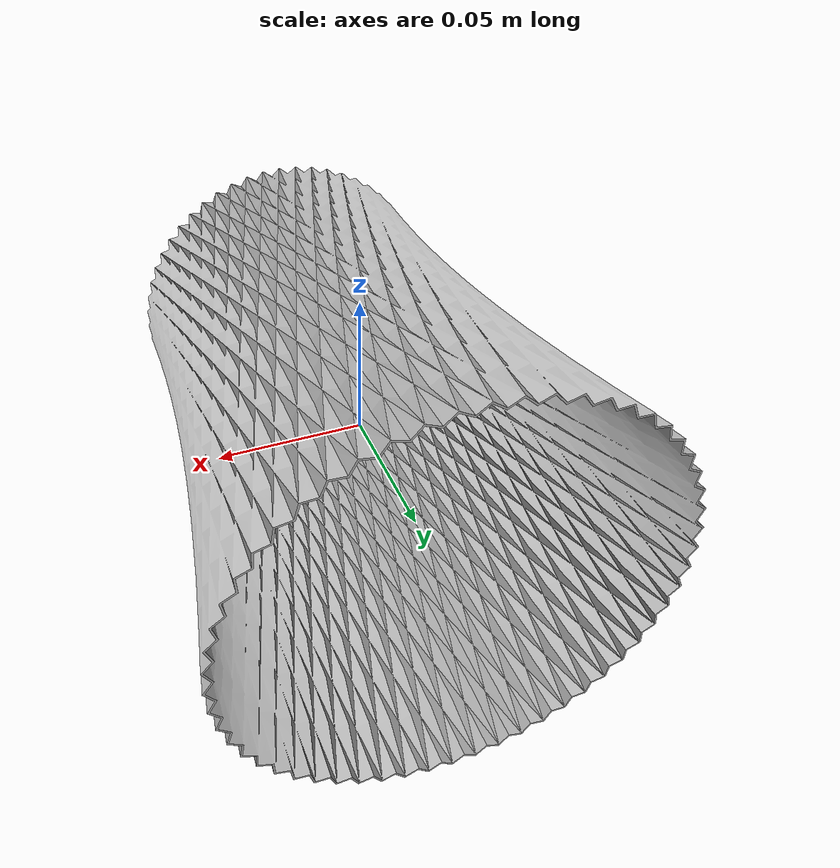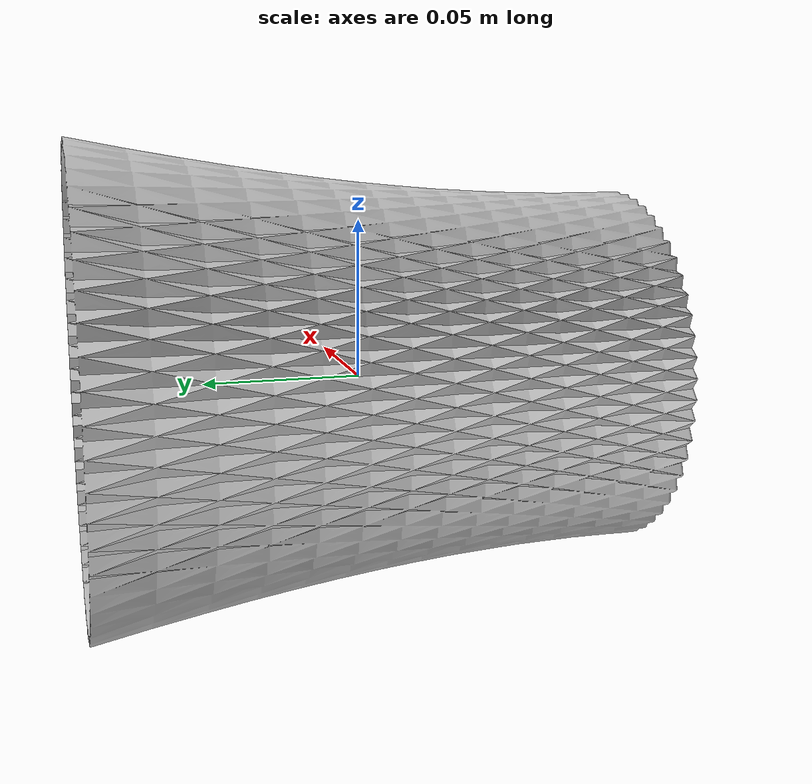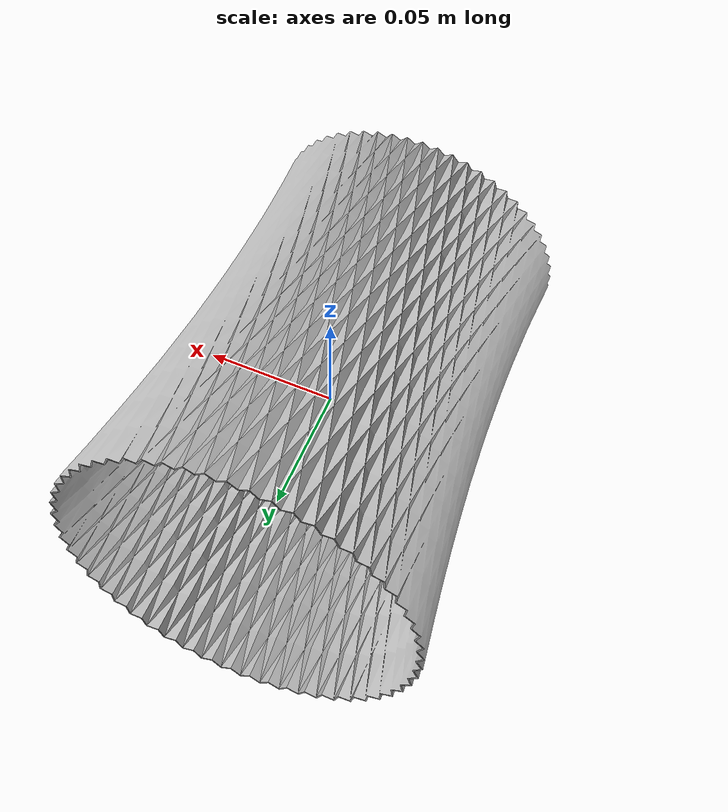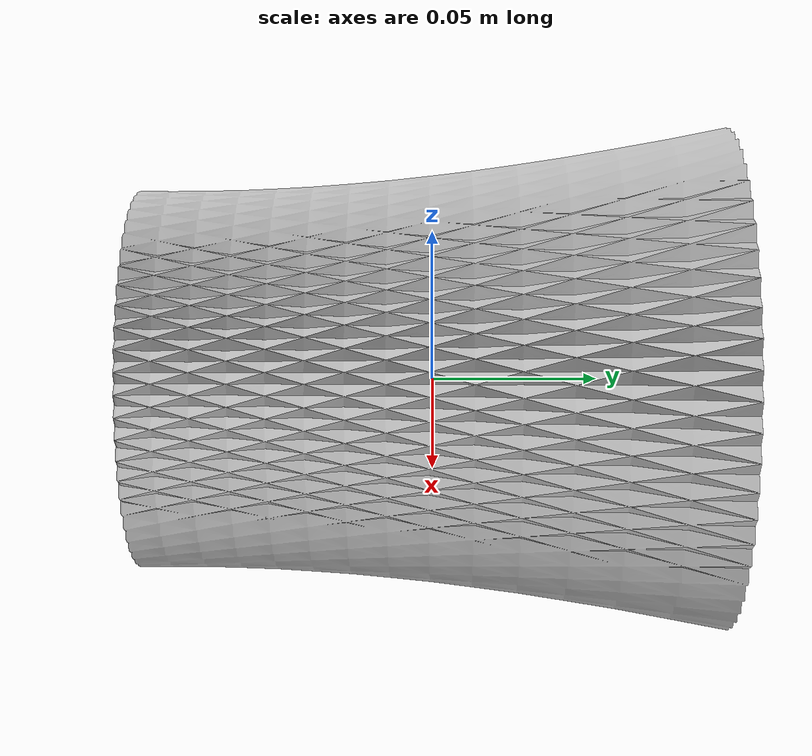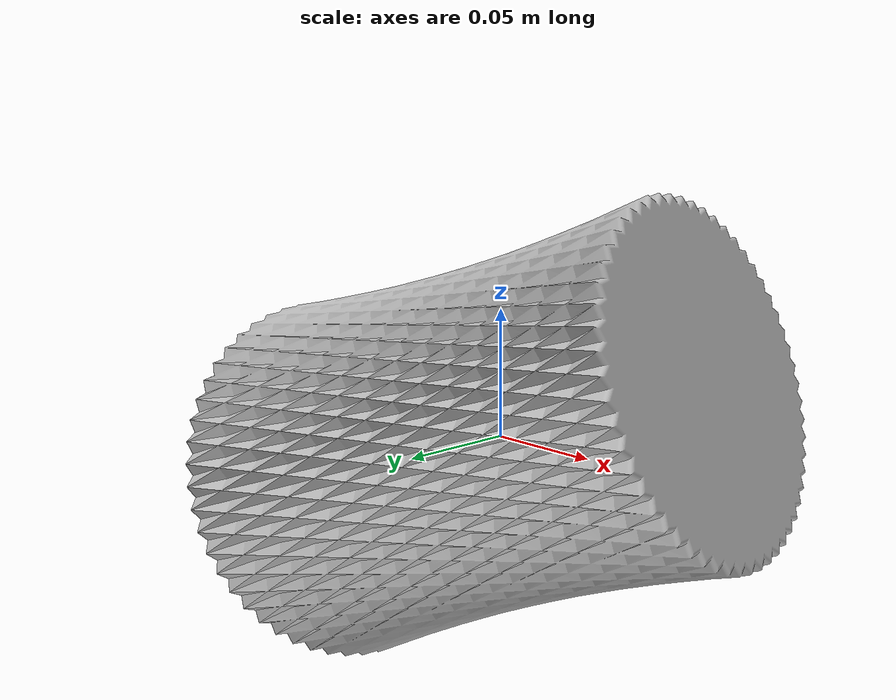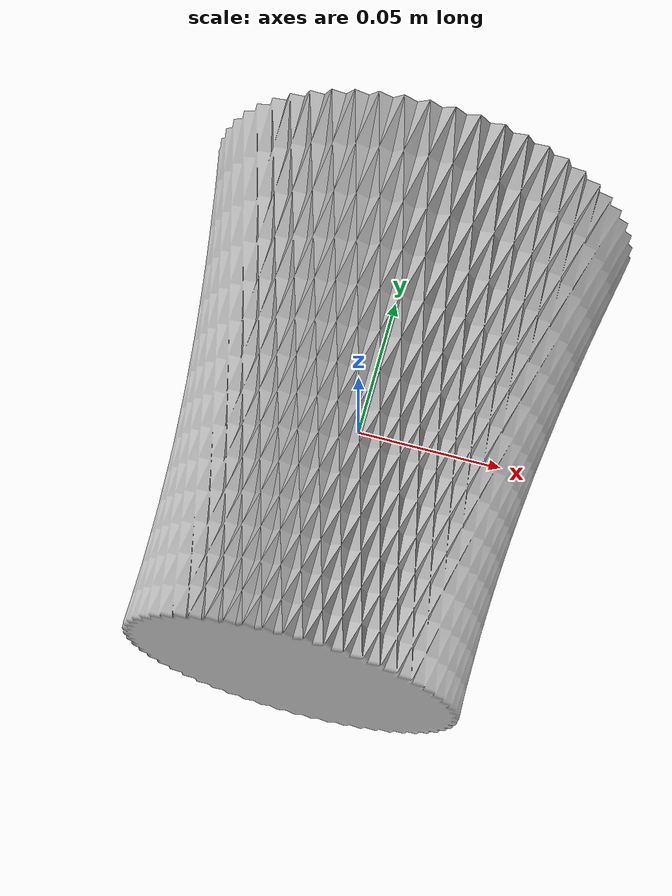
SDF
<?xml version="1.0"?>
<sdf version="1.9">
  <model name="basurero">
    <pose>0 0 0 0 0 0</pose>

    <static>true</static>

    <link name="basurero_link">
      <inertial>
        <!-- Basurero: ~1 kg, centro de masas en la base por estabilidad.
             Si es estatico (no se va a mover) los valores no importan
             realmente, pero los dejamos razonables. -->
        <mass>1.0</mass>
        <inertia>
          <ixx>1.0e-2</ixx>
          <iyy>1.0e-2</iyy>
          <izz>1.0e-2</izz>
          <ixy>0</ixy>
          <ixz>0</ixz>
          <iyz>0</iyz>
        </inertia>
        <pose>0 0 0.10 0 0 0</pose>
      </inertial>

      <!-- Colision: cilindro generico, ajusta radius/length a tu basurero real -->
      <collision name="basurero_collision">
        <pose>0 0 0.125 0 0 0</pose>
        <geometry>
          <cylinder>
            <radius>0.10</radius>
            <length>0.25</length>
          </cylinder>
        </geometry>
        <surface>
          <friction>
            <ode>
              <mu>1.0</mu>
              <mu2>1.0</mu2>
            </ode>
          </friction>
          <contact>
            <ode>
              <kp>1e6</kp>
              <kd>100</kd>
            </ode>
          </contact>
        </surface>
      </collision>

      <!-- Visual: malla del basurero. Ajusta scale segun unidades del STL.
           Si tu STL viene en mm: 0.001 0.001 0.001.
           Si viene en metros: 1 1 1. -->
      <visual name="basurero_visual">
        <pose>0 0 0 0 0 0</pose>
        <geometry>
          <mesh>
            <uri>package://robot_description_ur3/meshes/basurero/basurero.stl</uri>
            <scale>0.001 0.001 0.001</scale>
          </mesh>
        </geometry>
      </visual>
    </link>
  </model>
</sdf>
